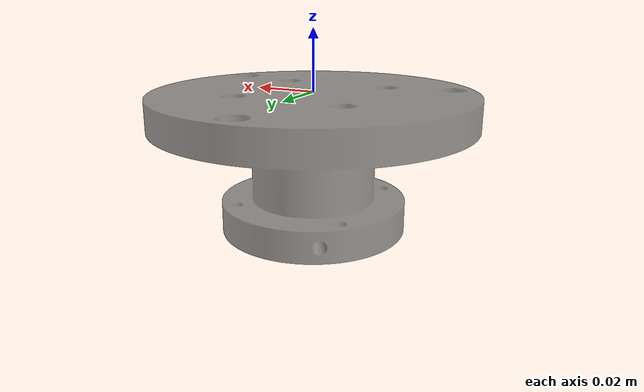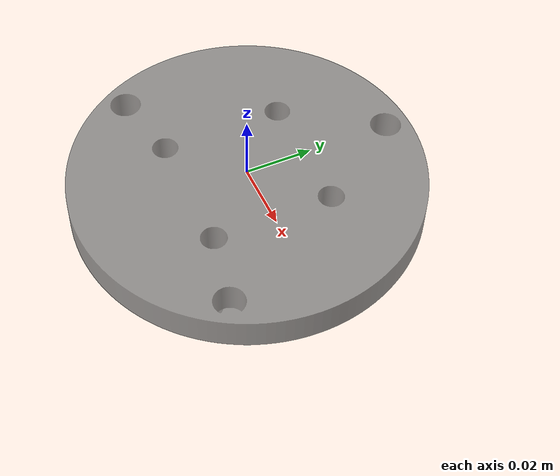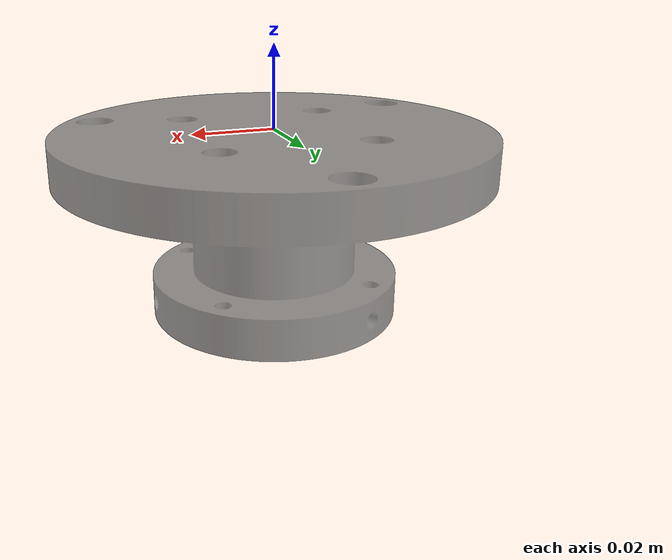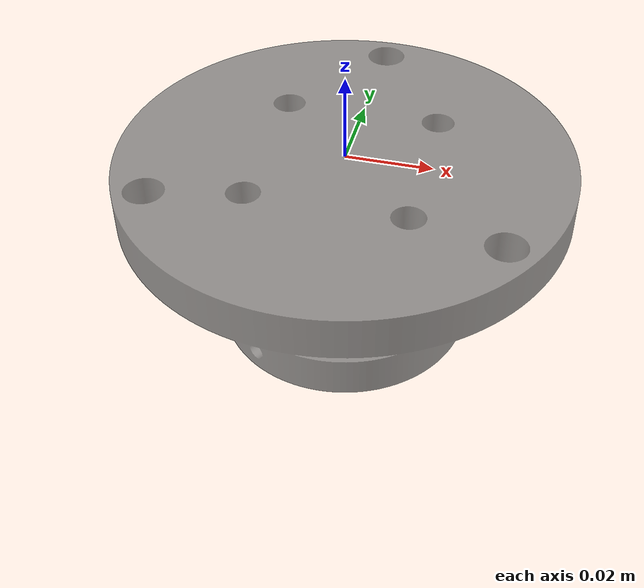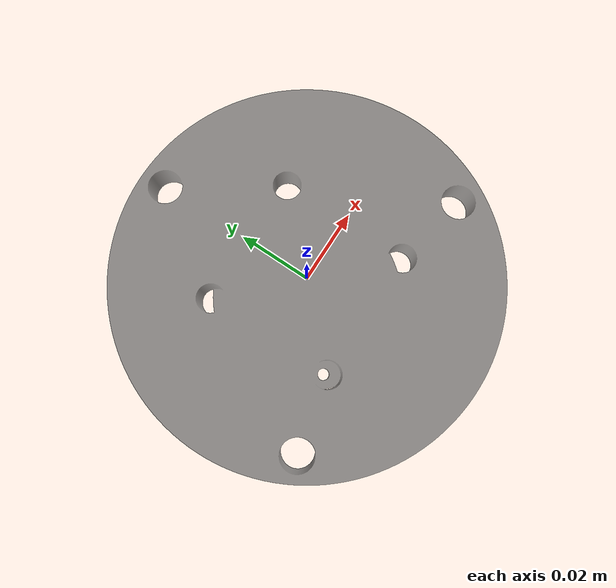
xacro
<?xml version='1.0'?>
<robot xmlns:xacro="http://www.ros.org/wiki/xacro" name="schunk_pzh20_adapter">
    <material name="darkgray">
        <color rgba="0.5 0.5 0.5 0.8"/>
    </material>
    <xacro:arg name="schunk_adapter_id" default="schunk_pzh20_adapter"/>
    <link name="$(arg schunk_adapter_id)">
        <visual>
            <origin rpy="0 0 0" xyz=" 0 0 0 "/>
            <geometry>
                <mesh filename="package://reconcycle_description/meshes/grippers/schunk_to_tc_adapter.stl" scale="0.001 0.001 0.001"/>
            </geometry>
            <material name="darkgray"/>
        </visual>
        <collision>
            <origin rpy="0 0 0" xyz="0.0 0.0 0"/>
            <geometry>
                <mesh filename="package://reconcycle_description/meshes/grippers/schunk_to_tc_adapter.stl" scale ="0.001 0.001 0.001"/>
            </geometry>
        </collision>
        <inertial>
            <origin xyz="0 0 0" rpy="0 0 0"/>
            <mass value="3"/>
            <inertia ixx="3.0" ixy="0.0" ixz="0.0" iyy="3.0" iyz="0.0" izz="3.0"/>
        </inertial>
    </link>
</robot>
